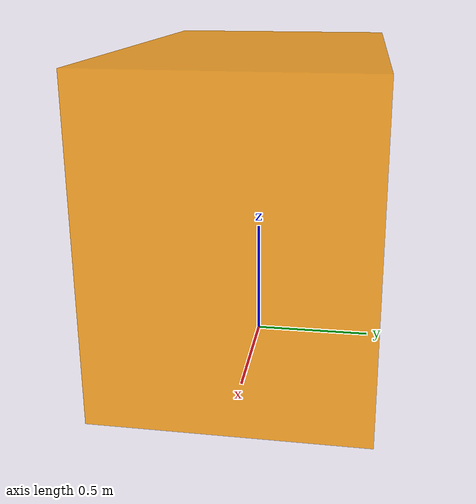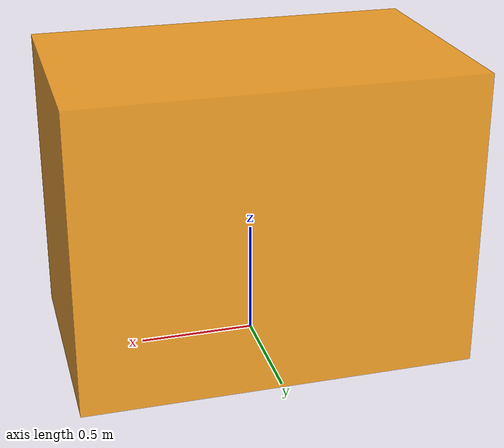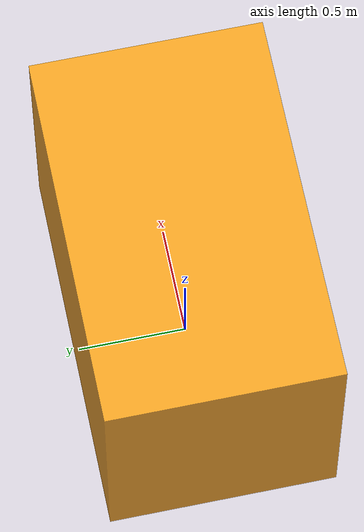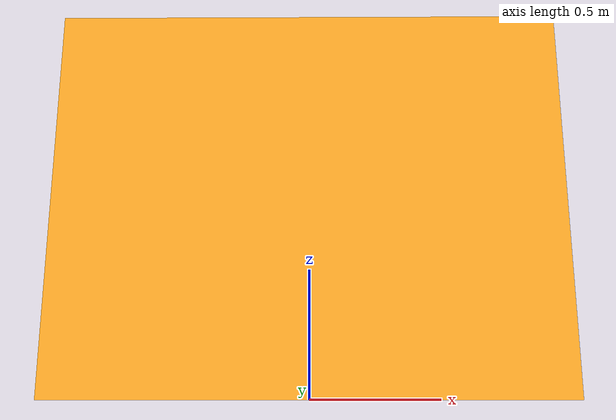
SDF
<?xml version="1.0"?>
<sdf version="1.7">
  <model name="fliehkraftgleitschleifanlage_bbox">
    <static>true</static>
    <link name="fliehkraftgleitschleifanlage_bbox_link">
      <pose>0 0 0.65 0 0 0</pose>
      <collision name="fliehkraftgleitschleifanlage_bbox_collision">
        <geometry>
          <box>
            <size>1.70 1.05 1.30</size>
          </box>
        </geometry>
      </collision>
      <visual name="fliehkraftgleitschleifanlage_bbox_visual">
        <geometry>
          <box>
            <size>1.70 1.05 1.30</size>
          </box>
        </geometry>
        <material>
          <ambient>1.00 0.62 0.05 0.85</ambient>
          <diffuse>1.00 0.62 0.05 0.85</diffuse>
          <specular>0.10 0.10 0.10 1.0</specular>
        </material>
        <transparency>0.15</transparency>
      </visual>
    </link>
  </model>
</sdf>
